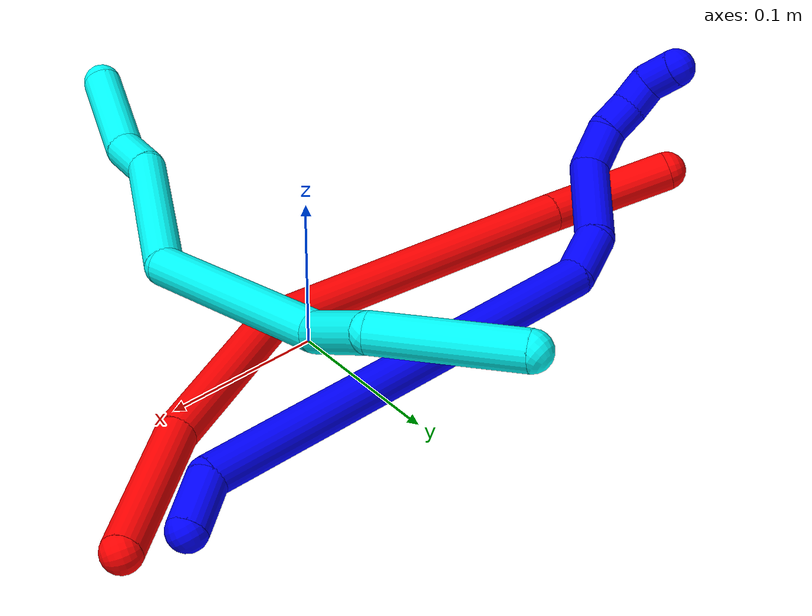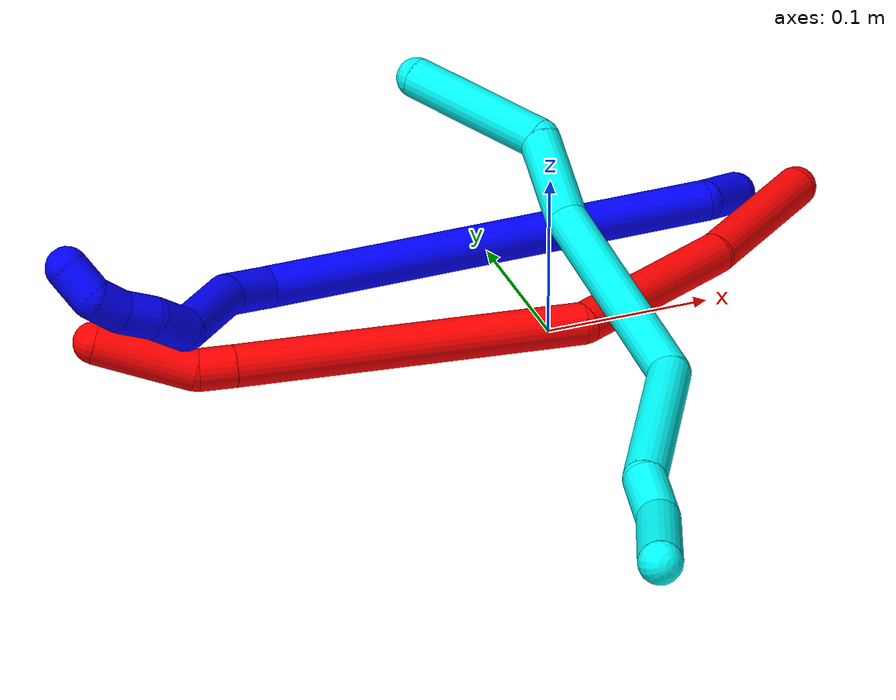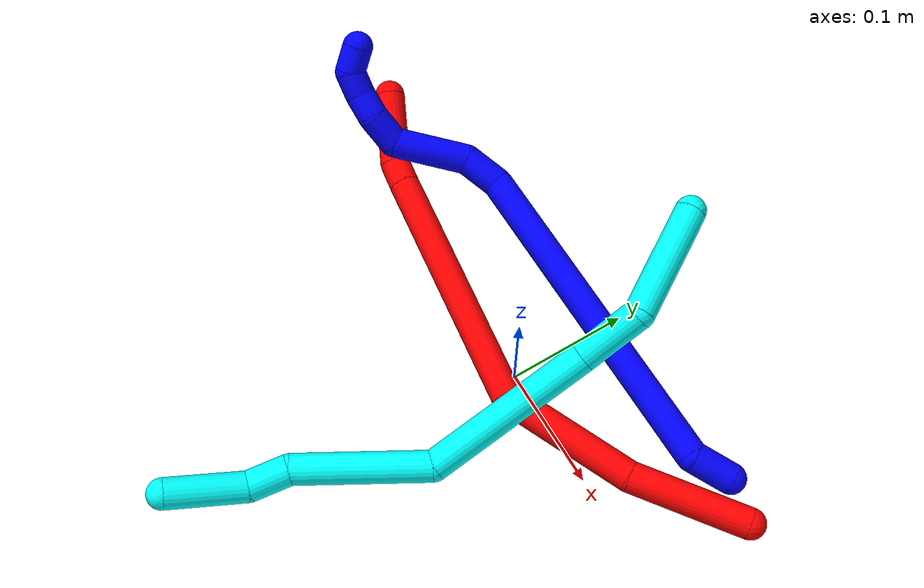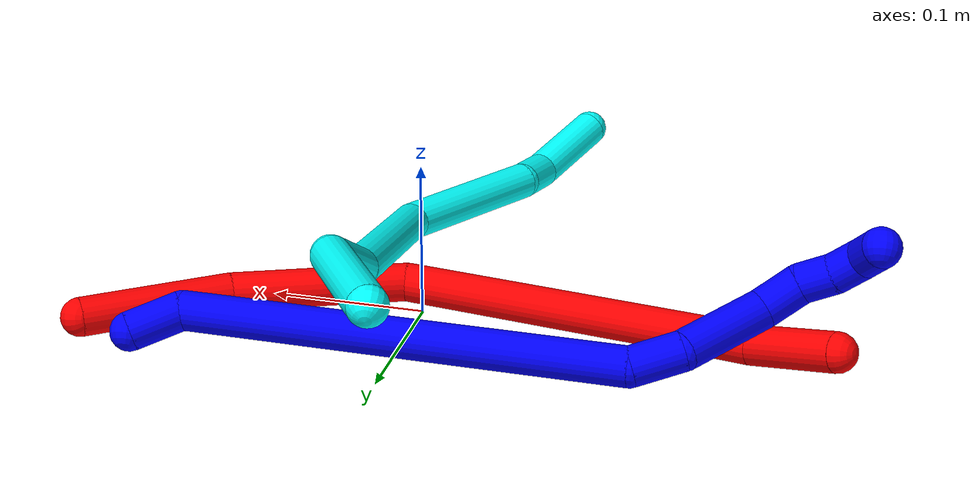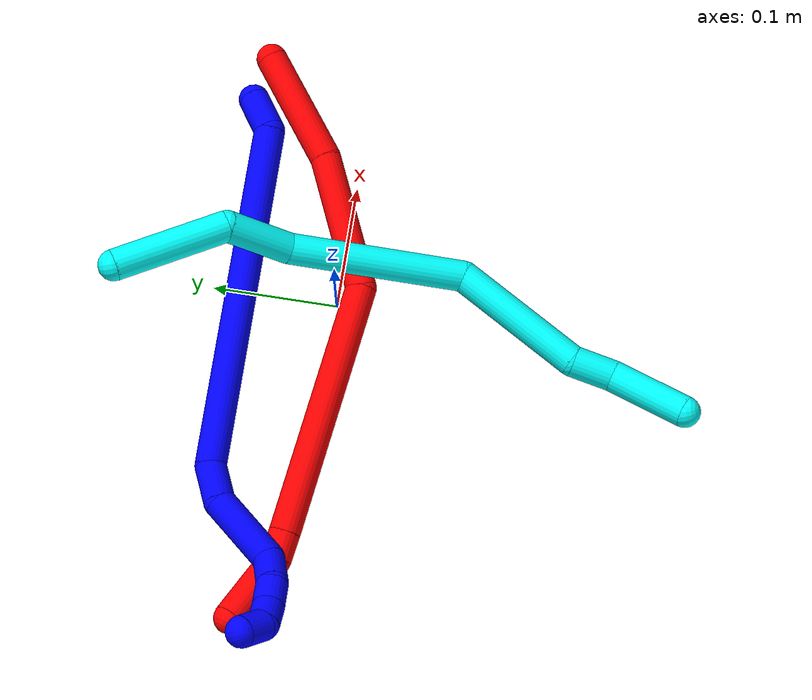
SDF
<sdf version="1.7">
 <world name="default">
  <model name="1">
   <static>0</static>
   <link name="1">
    <collision name="collision-cylinder-e_1_1_4">
     <pose>-0.014221 -0.004324 0.008858 0.454086 -0.964681 -0.240756</pose>
     <geometry><cylinder><radius>0.0125</radius><length>0.034606</length></cylinder></geometry>
     <surface>
      <friction><ode><mu>1.16</mu><mu2>1.16</mu2><slip1>0</slip1><slip2>0</slip2></ode></friction>
      <contact><ode><kp>1e+06</kp><kd>1</kd><max_vel>0</max_vel><min_depth>0.001</min_depth></ode></contact>
     </surface>
    </collision>
    <visual name="visual-cylinder-e_1_1_4">
     <pose>-0.014221 -0.004324 0.008858 0.454086 -0.964681 -0.240756</pose>
     <geometry><cylinder><radius>0.0125</radius><length>0.034606</length></cylinder></geometry>
     <material><ambient>0 0 1 1</ambient></material>
    </visual>
    <collision name="collision-cylinder-e_2_4_5">
     <pose>-0.167998 -0.018026 0.010867 2.20162 -1.48777 -2.13288</pose>
     <geometry><cylinder><radius>0.0125</radius><length>0.280078</length></cylinder></geometry>
     <surface>
      <friction><ode><mu>1.16</mu><mu2>1.16</mu2><slip1>0</slip1><slip2>0</slip2></ode></friction>
      <contact><ode><kp>1e+06</kp><kd>1</kd><max_vel>0</max_vel><min_depth>0.001</min_depth></ode></contact>
     </surface>
    </collision>
    <visual name="visual-cylinder-e_2_4_5">
     <pose>-0.167998 -0.018026 0.010867 2.20162 -1.48777 -2.13288</pose>
     <geometry><cylinder><radius>0.0125</radius><length>0.280078</length></cylinder></geometry>
     <material><ambient>0 0 1 1</ambient></material>
    </visual>
    <collision name="collision-cylinder-e_3_5_6">
     <pose>-0.322227 -0.030289 0.010581 0.413929 -1.11626 -0.260702</pose>
     <geometry><cylinder><radius>0.0125</radius><length>0.032661</length></cylinder></geometry>
     <surface>
      <friction><ode><mu>1.16</mu><mu2>1.16</mu2><slip1>0</slip1><slip2>0</slip2></ode></friction>
      <contact><ode><kp>1e+06</kp><kd>1</kd><max_vel>0</max_vel><min_depth>0.001</min_depth></ode></contact>
     </surface>
    </collision>
    <visual name="visual-cylinder-e_3_5_6">
     <pose>-0.322227 -0.030289 0.010581 0.413929 -1.11626 -0.260702</pose>
     <geometry><cylinder><radius>0.0125</radius><length>0.032661</length></cylinder></geometry>
     <material><ambient>0 0 1 1</ambient></material>
    </visual>
    <collision name="collision-cylinder-e_4_6_7">
     <pose>-0.356884 -0.047931 0.03552 0.676688 -0.703297 -0.256784</pose>
     <geometry><cylinder><radius>0.0125</radius><length>0.061801</length></cylinder></geometry>
     <surface>
      <friction><ode><mu>1.16</mu><mu2>1.16</mu2><slip1>0</slip1><slip2>0</slip2></ode></friction>
      <contact><ode><kp>1e+06</kp><kd>1</kd><max_vel>0</max_vel><min_depth>0.001</min_depth></ode></contact>
     </surface>
    </collision>
    <visual name="visual-cylinder-e_4_6_7">
     <pose>-0.356884 -0.047931 0.03552 0.676688 -0.703297 -0.256784</pose>
     <geometry><cylinder><radius>0.0125</radius><length>0.061801</length></cylinder></geometry>
     <material><ambient>0 0 1 1</ambient></material>
    </visual>
    <collision name="collision-cylinder-e_5_7_8">
     <pose>-0.388011 -0.060399 0.061752 -0.283738 -0.937284 0.144365</pose>
     <geometry><cylinder><radius>0.0125</radius><length>0.02765</length></cylinder></geometry>
     <surface>
      <friction><ode><mu>1.16</mu><mu2>1.16</mu2><slip1>0</slip1><slip2>0</slip2></ode></friction>
      <contact><ode><kp>1e+06</kp><kd>1</kd><max_vel>0</max_vel><min_depth>0.001</min_depth></ode></contact>
     </surface>
    </collision>
    <visual name="visual-cylinder-e_5_7_8">
     <pose>-0.388011 -0.060399 0.061752 -0.283738 -0.937284 0.144365</pose>
     <geometry><cylinder><radius>0.0125</radius><length>0.02765</length></cylinder></geometry>
     <material><ambient>0 0 1 1</ambient></material>
    </visual>
    <collision name="collision-cylinder-e_6_8_9">
     <pose>-0.409136 -0.056122 0.072575 -0.589962 -1.22742 0.421728</pose>
     <geometry><cylinder><radius>0.0125</radius><length>0.021203</length></cylinder></geometry>
     <surface>
      <friction><ode><mu>1.16</mu><mu2>1.16</mu2><slip1>0</slip1><slip2>0</slip2></ode></friction>
      <contact><ode><kp>1e+06</kp><kd>1</kd><max_vel>0</max_vel><min_depth>0.001</min_depth></ode></contact>
     </surface>
    </collision>
    <visual name="visual-cylinder-e_6_8_9">
     <pose>-0.409136 -0.056122 0.072575 -0.589962 -1.22742 0.421728</pose>
     <geometry><cylinder><radius>0.0125</radius><length>0.021203</length></cylinder></geometry>
     <material><ambient>0 0 1 1</ambient></material>
    </visual>
    <collision name="collision-cylinder-e_7_9_10">
     <pose>-0.427559 -0.050298 0.07954 -0.764844 -0.989736 0.427494</pose>
     <geometry><cylinder><radius>0.0125</radius><length>0.020197</length></cylinder></geometry>
     <surface>
      <friction><ode><mu>1.16</mu><mu2>1.16</mu2><slip1>0</slip1><slip2>0</slip2></ode></friction>
      <contact><ode><kp>1e+06</kp><kd>1</kd><max_vel>0</max_vel><min_depth>0.001</min_depth></ode></contact>
     </surface>
    </collision>
    <visual name="visual-cylinder-e_7_9_10">
     <pose>-0.427559 -0.050298 0.07954 -0.764844 -0.989736 0.427494</pose>
     <geometry><cylinder><radius>0.0125</radius><length>0.020197</length></cylinder></geometry>
     <material><ambient>0 0 1 1</ambient></material>
    </visual>
    <collision name="collision-cylinder-e_8_10_2">
     <pose>-0.44154 -0.037074 0.083786 -1.54449 -0.533002 0.519784</pose>
     <geometry><cylinder><radius>0.0125</radius><length>0.021804</length></cylinder></geometry>
     <surface>
      <friction><ode><mu>1.16</mu><mu2>1.16</mu2><slip1>0</slip1><slip2>0</slip2></ode></friction>
      <contact><ode><kp>1e+06</kp><kd>1</kd><max_vel>0</max_vel><min_depth>0.001</min_depth></ode></contact>
     </surface>
    </collision>
    <visual name="visual-cylinder-e_8_10_2">
     <pose>-0.44154 -0.037074 0.083786 -1.54449 -0.533002 0.519784</pose>
     <geometry><cylinder><radius>0.0125</radius><length>0.021804</length></cylinder></geometry>
     <material><ambient>0 0 1 1</ambient></material>
    </visual>
    <collision name="collision-sphere-2">
     <pose>-0.44708 -0.027687 0.084033 0 -0 0</pose>
     <geometry><sphere><radius>0.0125</radius></sphere></geometry>
     <surface>
      <friction><ode><mu>1.16</mu><mu2>1.16</mu2><slip1>0</slip1><slip2>0</slip2></ode></friction>
      <contact><ode><kp>1e+06</kp><kd>1</kd><max_vel>0</max_vel><min_depth>0.001</min_depth></ode></contact>
     </surface>
    </collision>
    <visual name="visual-sphere-2">
     <pose>-0.44708 -0.027687 0.084033 0 -0 0</pose>
     <geometry><sphere><radius>0.0125</radius></sphere></geometry>
     <material><ambient>0 0 1 1</ambient></material>
    </visual>
    <collision name="collision-sphere-10">
     <pose>-0.436001 -0.04646 0.083539 0 -0 0</pose>
     <geometry><sphere><radius>0.0125</radius></sphere></geometry>
     <surface>
      <friction><ode><mu>1.16</mu><mu2>1.16</mu2><slip1>0</slip1><slip2>0</slip2></ode></friction>
      <contact><ode><kp>1e+06</kp><kd>1</kd><max_vel>0</max_vel><min_depth>0.001</min_depth></ode></contact>
     </surface>
    </collision>
    <visual name="visual-sphere-10">
     <pose>-0.436001 -0.04646 0.083539 0 -0 0</pose>
     <geometry><sphere><radius>0.0125</radius></sphere></geometry>
     <material><ambient>0 0 1 1</ambient></material>
    </visual>
    <collision name="collision-sphere-9">
     <pose>-0.419118 -0.054137 0.075541 0 -0 0</pose>
     <geometry><sphere><radius>0.0125</radius></sphere></geometry>
     <surface>
      <friction><ode><mu>1.16</mu><mu2>1.16</mu2><slip1>0</slip1><slip2>0</slip2></ode></friction>
      <contact><ode><kp>1e+06</kp><kd>1</kd><max_vel>0</max_vel><min_depth>0.001</min_depth></ode></contact>
     </surface>
    </collision>
    <visual name="visual-sphere-9">
     <pose>-0.419118 -0.054137 0.075541 0 -0 0</pose>
     <geometry><sphere><radius>0.0125</radius></sphere></geometry>
     <material><ambient>0 0 1 1</ambient></material>
    </visual>
    <collision name="collision-sphere-4">
     <pose>-0.028442 -0.008648 0.017717 0 -0 0</pose>
     <geometry><sphere><radius>0.0125</radius></sphere></geometry>
     <surface>
      <friction><ode><mu>1.16</mu><mu2>1.16</mu2><slip1>0</slip1><slip2>0</slip2></ode></friction>
      <contact><ode><kp>1e+06</kp><kd>1</kd><max_vel>0</max_vel><min_depth>0.001</min_depth></ode></contact>
     </surface>
    </collision>
    <visual name="visual-sphere-4">
     <pose>-0.028442 -0.008648 0.017717 0 -0 0</pose>
     <geometry><sphere><radius>0.0125</radius></sphere></geometry>
     <material><ambient>0 0 1 1</ambient></material>
    </visual>
    <collision name="collision-sphere-1">
     <geometry><sphere><radius>0.0125</radius></sphere></geometry>
     <surface>
      <friction><ode><mu>1.16</mu><mu2>1.16</mu2><slip1>0</slip1><slip2>0</slip2></ode></friction>
      <contact><ode><kp>1e+06</kp><kd>1</kd><max_vel>0</max_vel><min_depth>0.001</min_depth></ode></contact>
     </surface>
    </collision>
    <visual name="visual-sphere-1">
     <geometry><sphere><radius>0.0125</radius></sphere></geometry>
     <material><ambient>0 0 1 1</ambient></material>
    </visual>
    <collision name="collision-sphere-8">
     <pose>-0.399153 -0.058108 0.069609 0 -0 0</pose>
     <geometry><sphere><radius>0.0125</radius></sphere></geometry>
     <surface>
      <friction><ode><mu>1.16</mu><mu2>1.16</mu2><slip1>0</slip1><slip2>0</slip2></ode></friction>
      <contact><ode><kp>1e+06</kp><kd>1</kd><max_vel>0</max_vel><min_depth>0.001</min_depth></ode></contact>
     </surface>
    </collision>
    <visual name="visual-sphere-8">
     <pose>-0.399153 -0.058108 0.069609 0 -0 0</pose>
     <geometry><sphere><radius>0.0125</radius></sphere></geometry>
     <material><ambient>0 0 1 1</ambient></material>
    </visual>
    <collision name="collision-sphere-5">
     <pose>-0.307555 -0.027405 0.004017 0 -0 0</pose>
     <geometry><sphere><radius>0.0125</radius></sphere></geometry>
     <surface>
      <friction><ode><mu>1.16</mu><mu2>1.16</mu2><slip1>0</slip1><slip2>0</slip2></ode></friction>
      <contact><ode><kp>1e+06</kp><kd>1</kd><max_vel>0</max_vel><min_depth>0.001</min_depth></ode></contact>
     </surface>
    </collision>
    <visual name="visual-sphere-5">
     <pose>-0.307555 -0.027405 0.004017 0 -0 0</pose>
     <geometry><sphere><radius>0.0125</radius></sphere></geometry>
     <material><ambient>0 0 1 1</ambient></material>
    </visual>
    <collision name="collision-sphere-6">
     <pose>-0.3369 -0.033173 0.017145 0 -0 0</pose>
     <geometry><sphere><radius>0.0125</radius></sphere></geometry>
     <surface>
      <friction><ode><mu>1.16</mu><mu2>1.16</mu2><slip1>0</slip1><slip2>0</slip2></ode></friction>
      <contact><ode><kp>1e+06</kp><kd>1</kd><max_vel>0</max_vel><min_depth>0.001</min_depth></ode></contact>
     </surface>
    </collision>
    <visual name="visual-sphere-6">
     <pose>-0.3369 -0.033173 0.017145 0 -0 0</pose>
     <geometry><sphere><radius>0.0125</radius></sphere></geometry>
     <material><ambient>0 0 1 1</ambient></material>
    </visual>
    <collision name="collision-sphere-7">
     <pose>-0.376868 -0.06269 0.053895 0 -0 0</pose>
     <geometry><sphere><radius>0.0125</radius></sphere></geometry>
     <surface>
      <friction><ode><mu>1.16</mu><mu2>1.16</mu2><slip1>0</slip1><slip2>0</slip2></ode></friction>
      <contact><ode><kp>1e+06</kp><kd>1</kd><max_vel>0</max_vel><min_depth>0.001</min_depth></ode></contact>
     </surface>
    </collision>
    <visual name="visual-sphere-7">
     <pose>-0.376868 -0.06269 0.053895 0 -0 0</pose>
     <geometry><sphere><radius>0.0125</radius></sphere></geometry>
     <material><ambient>0 0 1 1</ambient></material>
    </visual>
    <inertial>
     <pose>-0.235582 -0.027668 0.025141 0 -0 0</pose>
     <mass>0.5</mass>
     <inertia>
      <ixx>-0.000225</ixx>
      <ixy>0</ixy>
      <ixz>0</ixz>
      <iyy>0.001732</iyy>
      <iyz>0</iyz>
      <izz>0.002003</izz>
     </inertia>
    </inertial>
   </link>
   <pose>0.159721 0.094938 0.011499 0.736047 0.075679 -0.008936</pose>
  </model>
  <model name="2">
   <static>0</static>
   <link name="2">
    <collision name="collision-cylinder-e_1_1_4">
     <pose>-0.041866 -0.00403 0.02401 0.1663 -1.04408 -0.095815</pose>
     <geometry><cylinder><radius>0.0125</radius><length>0.096861</length></cylinder></geometry>
     <surface>
      <friction><ode><mu>1.16</mu><mu2>1.16</mu2><slip1>0</slip1><slip2>0</slip2></ode></friction>
      <contact><ode><kp>1e+06</kp><kd>1</kd><max_vel>0</max_vel><min_depth>0.001</min_depth></ode></contact>
     </surface>
    </collision>
    <visual name="visual-cylinder-e_1_1_4">
     <pose>-0.041866 -0.00403 0.02401 0.1663 -1.04408 -0.095815</pose>
     <geometry><cylinder><radius>0.0125</radius><length>0.096861</length></cylinder></geometry>
     <material><ambient>1 0 0 1</ambient></material>
    </visual>
    <collision name="collision-cylinder-e_2_4_5">
     <pose>-0.12609 -0.008293 0.085605 0.006185 -0.845021 -0.002781</pose>
     <geometry><cylinder><radius>0.0125</radius><length>0.113258</length></cylinder></geometry>
     <surface>
      <friction><ode><mu>1.16</mu><mu2>1.16</mu2><slip1>0</slip1><slip2>0</slip2></ode></friction>
      <contact><ode><kp>1e+06</kp><kd>1</kd><max_vel>0</max_vel><min_depth>0.001</min_depth></ode></contact>
     </surface>
    </collision>
    <visual name="visual-cylinder-e_2_4_5">
     <pose>-0.12609 -0.008293 0.085605 0.006185 -0.845021 -0.002781</pose>
     <geometry><cylinder><radius>0.0125</radius><length>0.113258</length></cylinder></geometry>
     <material><ambient>1 0 0 1</ambient></material>
    </visual>
    <collision name="collision-cylinder-e_3_5_6">
     <pose>-0.200477 0.006615 0.220503 -0.154347 -0.314434 0.024515</pose>
     <geometry><cylinder><radius>0.0125</radius><length>0.207123</length></cylinder></geometry>
     <surface>
      <friction><ode><mu>1.16</mu><mu2>1.16</mu2><slip1>0</slip1><slip2>0</slip2></ode></friction>
      <contact><ode><kp>1e+06</kp><kd>1</kd><max_vel>0</max_vel><min_depth>0.001</min_depth></ode></contact>
     </surface>
    </collision>
    <visual name="visual-cylinder-e_3_5_6">
     <pose>-0.200477 0.006615 0.220503 -0.154347 -0.314434 0.024515</pose>
     <geometry><cylinder><radius>0.0125</radius><length>0.207123</length></cylinder></geometry>
     <material><ambient>1 0 0 1</ambient></material>
    </visual>
    <collision name="collision-cylinder-e_4_6_7">
     <pose>-0.235662 0.023461 0.328249 -0.162027 -0.290087 0.023718</pose>
     <geometry><cylinder><radius>0.0125</radius><length>0.022064</length></cylinder></geometry>
     <surface>
      <friction><ode><mu>1.16</mu><mu2>1.16</mu2><slip1>0</slip1><slip2>0</slip2></ode></friction>
      <contact><ode><kp>1e+06</kp><kd>1</kd><max_vel>0</max_vel><min_depth>0.001</min_depth></ode></contact>
     </surface>
    </collision>
    <visual name="visual-cylinder-e_4_6_7">
     <pose>-0.235662 0.023461 0.328249 -0.162027 -0.290087 0.023718</pose>
     <geometry><cylinder><radius>0.0125</radius><length>0.022064</length></cylinder></geometry>
     <material><ambient>1 0 0 1</ambient></material>
    </visual>
    <collision name="collision-cylinder-e_5_7_2">
     <pose>-0.23712 0.024552 0.368975 0.020284 0.055977 0.000568</pose>
     <geometry><cylinder><radius>0.0125</radius><length>0.060694</length></cylinder></geometry>
     <surface>
      <friction><ode><mu>1.16</mu><mu2>1.16</mu2><slip1>0</slip1><slip2>0</slip2></ode></friction>
      <contact><ode><kp>1e+06</kp><kd>1</kd><max_vel>0</max_vel><min_depth>0.001</min_depth></ode></contact>
     </surface>
    </collision>
    <visual name="visual-cylinder-e_5_7_2">
     <pose>-0.23712 0.024552 0.368975 0.020284 0.055977 0.000568</pose>
     <geometry><cylinder><radius>0.0125</radius><length>0.060694</length></cylinder></geometry>
     <material><ambient>1 0 0 1</ambient></material>
    </visual>
    <collision name="collision-sphere-2">
     <pose>-0.235422 0.023937 0.399268 0 -0 0</pose>
     <geometry><sphere><radius>0.0125</radius></sphere></geometry>
     <surface>
      <friction><ode><mu>1.16</mu><mu2>1.16</mu2><slip1>0</slip1><slip2>0</slip2></ode></friction>
      <contact><ode><kp>1e+06</kp><kd>1</kd><max_vel>0</max_vel><min_depth>0.001</min_depth></ode></contact>
     </surface>
    </collision>
    <visual name="visual-sphere-2">
     <pose>-0.235422 0.023937 0.399268 0 -0 0</pose>
     <geometry><sphere><radius>0.0125</radius></sphere></geometry>
     <material><ambient>1 0 0 1</ambient></material>
    </visual>
    <collision name="collision-sphere-7">
     <pose>-0.238818 0.025167 0.338682 0 -0 0</pose>
     <geometry><sphere><radius>0.0125</radius></sphere></geometry>
     <surface>
      <friction><ode><mu>1.16</mu><mu2>1.16</mu2><slip1>0</slip1><slip2>0</slip2></ode></friction>
      <contact><ode><kp>1e+06</kp><kd>1</kd><max_vel>0</max_vel><min_depth>0.001</min_depth></ode></contact>
     </surface>
    </collision>
    <visual name="visual-sphere-7">
     <pose>-0.238818 0.025167 0.338682 0 -0 0</pose>
     <geometry><sphere><radius>0.0125</radius></sphere></geometry>
     <material><ambient>1 0 0 1</ambient></material>
    </visual>
    <collision name="collision-sphere-6">
     <pose>-0.232506 0.021756 0.317817 0 -0 0</pose>
     <geometry><sphere><radius>0.0125</radius></sphere></geometry>
     <surface>
      <friction><ode><mu>1.16</mu><mu2>1.16</mu2><slip1>0</slip1><slip2>0</slip2></ode></friction>
      <contact><ode><kp>1e+06</kp><kd>1</kd><max_vel>0</max_vel><min_depth>0.001</min_depth></ode></contact>
     </surface>
    </collision>
    <visual name="visual-sphere-6">
     <pose>-0.232506 0.021756 0.317817 0 -0 0</pose>
     <geometry><sphere><radius>0.0125</radius></sphere></geometry>
     <material><ambient>1 0 0 1</ambient></material>
    </visual>
    <collision name="collision-sphere-5">
     <pose>-0.168448 -0.008525 0.12319 0 -0 0</pose>
     <geometry><sphere><radius>0.0125</radius></sphere></geometry>
     <surface>
      <friction><ode><mu>1.16</mu><mu2>1.16</mu2><slip1>0</slip1><slip2>0</slip2></ode></friction>
      <contact><ode><kp>1e+06</kp><kd>1</kd><max_vel>0</max_vel><min_depth>0.001</min_depth></ode></contact>
     </surface>
    </collision>
    <visual name="visual-sphere-5">
     <pose>-0.168448 -0.008525 0.12319 0 -0 0</pose>
     <geometry><sphere><radius>0.0125</radius></sphere></geometry>
     <material><ambient>1 0 0 1</ambient></material>
    </visual>
    <collision name="collision-sphere-1">
     <geometry><sphere><radius>0.0125</radius></sphere></geometry>
     <surface>
      <friction><ode><mu>1.16</mu><mu2>1.16</mu2><slip1>0</slip1><slip2>0</slip2></ode></friction>
      <contact><ode><kp>1e+06</kp><kd>1</kd><max_vel>0</max_vel><min_depth>0.001</min_depth></ode></contact>
     </surface>
    </collision>
    <visual name="visual-sphere-1">
     <geometry><sphere><radius>0.0125</radius></sphere></geometry>
     <material><ambient>1 0 0 1</ambient></material>
    </visual>
    <collision name="collision-sphere-4">
     <pose>-0.083733 -0.00806 0.04802 0 -0 0</pose>
     <geometry><sphere><radius>0.0125</radius></sphere></geometry>
     <surface>
      <friction><ode><mu>1.16</mu><mu2>1.16</mu2><slip1>0</slip1><slip2>0</slip2></ode></friction>
      <contact><ode><kp>1e+06</kp><kd>1</kd><max_vel>0</max_vel><min_depth>0.001</min_depth></ode></contact>
     </surface>
    </collision>
    <visual name="visual-sphere-4">
     <pose>-0.083733 -0.00806 0.04802 0 -0 0</pose>
     <geometry><sphere><radius>0.0125</radius></sphere></geometry>
     <material><ambient>1 0 0 1</ambient></material>
    </visual>
    <inertial>
     <pose>-0.158901 0.004097 0.174659 0 -0 0</pose>
     <mass>0.5</mass>
     <inertia>
      <ixx>0.000852</ixx>
      <ixy>0</ixy>
      <ixz>0</ixz>
      <iyy>0.000983</iyy>
      <iyz>0</iyz>
      <izz>0.000322</izz>
     </inertia>
    </inertial>
   </link>
   <pose>0.196615 0.086705 0.012496 -1.34493 -0.215761 1.12084</pose>
  </model>
  <model name="3">
   <static>0</static>
   <link name="3">
    <collision name="collision-cylinder-e_1_1_4">
     <pose>0.022104 -0.013379 0.038817 0.331919 0.493852 0.084393</pose>
     <geometry><cylinder><radius>0.0125</radius><length>0.09326</length></cylinder></geometry>
     <surface>
      <friction><ode><mu>1.16</mu><mu2>1.16</mu2><slip1>0</slip1><slip2>0</slip2></ode></friction>
      <contact><ode><kp>1e+06</kp><kd>1</kd><max_vel>0</max_vel><min_depth>0.001</min_depth></ode></contact>
     </surface>
    </collision>
    <visual name="visual-cylinder-e_1_1_4">
     <pose>0.022104 -0.013379 0.038817 0.331919 0.493852 0.084393</pose>
     <geometry><cylinder><radius>0.0125</radius><length>0.09326</length></cylinder></geometry>
     <material><ambient>0.003922 1 0.996078 1</ambient></material>
    </visual>
    <collision name="collision-cylinder-e_2_4_5">
     <pose>0.046905 -0.049003 0.094309 0.927556 0.096728 0.048408</pose>
     <geometry><cylinder><radius>0.0125</radius><length>0.055862</length></cylinder></geometry>
     <surface>
      <friction><ode><mu>1.16</mu><mu2>1.16</mu2><slip1>0</slip1><slip2>0</slip2></ode></friction>
      <contact><ode><kp>1e+06</kp><kd>1</kd><max_vel>0</max_vel><min_depth>0.001</min_depth></ode></contact>
     </surface>
    </collision>
    <visual name="visual-cylinder-e_2_4_5">
     <pose>0.046905 -0.049003 0.094309 0.927556 0.096728 0.048408</pose>
     <geometry><cylinder><radius>0.0125</radius><length>0.055862</length></cylinder></geometry>
     <material><ambient>0.003922 1 0.996078 1</ambient></material>
    </visual>
    <collision name="collision-cylinder-e_3_5_6">
     <pose>0.053734 -0.109549 0.170419 0.572447 0.058359 0.01718</pose>
     <geometry><cylinder><radius>0.0125</radius><length>0.141655</length></cylinder></geometry>
     <surface>
      <friction><ode><mu>1.16</mu><mu2>1.16</mu2><slip1>0</slip1><slip2>0</slip2></ode></friction>
      <contact><ode><kp>1e+06</kp><kd>1</kd><max_vel>0</max_vel><min_depth>0.001</min_depth></ode></contact>
     </surface>
    </collision>
    <visual name="visual-cylinder-e_3_5_6">
     <pose>0.053734 -0.109549 0.170419 0.572447 0.058359 0.01718</pose>
     <geometry><cylinder><radius>0.0125</radius><length>0.141655</length></cylinder></geometry>
     <material><ambient>0.003922 1 0.996078 1</ambient></material>
    </visual>
    <collision name="collision-cylinder-e_4_6_7">
     <pose>0.029276 -0.174773 0.268393 0.609774 -0.546376 -0.175898</pose>
     <geometry><cylinder><radius>0.0125</radius><length>0.110043</length></cylinder></geometry>
     <surface>
      <friction><ode><mu>1.16</mu><mu2>1.16</mu2><slip1>0</slip1><slip2>0</slip2></ode></friction>
      <contact><ode><kp>1e+06</kp><kd>1</kd><max_vel>0</max_vel><min_depth>0.001</min_depth></ode></contact>
     </surface>
    </collision>
    <visual name="visual-cylinder-e_4_6_7">
     <pose>0.029276 -0.174773 0.268393 0.609774 -0.546376 -0.175898</pose>
     <geometry><cylinder><radius>0.0125</radius><length>0.110043</length></cylinder></geometry>
     <material><ambient>0.003922 1 0.996078 1</ambient></material>
    </visual>
    <collision name="collision-cylinder-e_5_7_8">
     <pose>-0.002313 -0.210978 0.320995 0.583348 -0.176188 -0.053023</pose>
     <geometry><cylinder><radius>0.0125</radius><length>0.034231</length></cylinder></geometry>
     <surface>
      <friction><ode><mu>1.16</mu><mu2>1.16</mu2><slip1>0</slip1><slip2>0</slip2></ode></friction>
      <contact><ode><kp>1e+06</kp><kd>1</kd><max_vel>0</max_vel><min_depth>0.001</min_depth></ode></contact>
     </surface>
    </collision>
    <visual name="visual-cylinder-e_5_7_8">
     <pose>-0.002313 -0.210978 0.320995 0.583348 -0.176188 -0.053023</pose>
     <geometry><cylinder><radius>0.0125</radius><length>0.034231</length></cylinder></geometry>
     <material><ambient>0.003922 1 0.996078 1</ambient></material>
    </visual>
    <collision name="collision-cylinder-e_6_8_2">
     <pose>-0.020626 -0.228781 0.362399 0.302171 -0.491026 -0.076259</pose>
     <geometry><cylinder><radius>0.0125</radius><length>0.064947</length></cylinder></geometry>
     <surface>
      <friction><ode><mu>1.16</mu><mu2>1.16</mu2><slip1>0</slip1><slip2>0</slip2></ode></friction>
      <contact><ode><kp>1e+06</kp><kd>1</kd><max_vel>0</max_vel><min_depth>0.001</min_depth></ode></contact>
     </surface>
    </collision>
    <visual name="visual-cylinder-e_6_8_2">
     <pose>-0.020626 -0.228781 0.362399 0.302171 -0.491026 -0.076259</pose>
     <geometry><cylinder><radius>0.0125</radius><length>0.064947</length></cylinder></geometry>
     <material><ambient>0.003922 1 0.996078 1</ambient></material>
    </visual>
    <collision name="collision-sphere-2">
     <pose>-0.035938 -0.237304 0.389738 0 -0 0</pose>
     <geometry><sphere><radius>0.0125</radius></sphere></geometry>
     <surface>
      <friction><ode><mu>1.16</mu><mu2>1.16</mu2><slip1>0</slip1><slip2>0</slip2></ode></friction>
      <contact><ode><kp>1e+06</kp><kd>1</kd><max_vel>0</max_vel><min_depth>0.001</min_depth></ode></contact>
     </surface>
    </collision>
    <visual name="visual-sphere-2">
     <pose>-0.035938 -0.237304 0.389738 0 -0 0</pose>
     <geometry><sphere><radius>0.0125</radius></sphere></geometry>
     <material><ambient>0.003922 1 0.996078 1</ambient></material>
    </visual>
    <collision name="collision-sphere-4">
     <pose>0.044207 -0.026758 0.077635 0 -0 0</pose>
     <geometry><sphere><radius>0.0125</radius></sphere></geometry>
     <surface>
      <friction><ode><mu>1.16</mu><mu2>1.16</mu2><slip1>0</slip1><slip2>0</slip2></ode></friction>
      <contact><ode><kp>1e+06</kp><kd>1</kd><max_vel>0</max_vel><min_depth>0.001</min_depth></ode></contact>
     </surface>
    </collision>
    <visual name="visual-sphere-4">
     <pose>0.044207 -0.026758 0.077635 0 -0 0</pose>
     <geometry><sphere><radius>0.0125</radius></sphere></geometry>
     <material><ambient>0.003922 1 0.996078 1</ambient></material>
    </visual>
    <collision name="collision-sphere-1">
     <geometry><sphere><radius>0.0125</radius></sphere></geometry>
     <surface>
      <friction><ode><mu>1.16</mu><mu2>1.16</mu2><slip1>0</slip1><slip2>0</slip2></ode></friction>
      <contact><ode><kp>1e+06</kp><kd>1</kd><max_vel>0</max_vel><min_depth>0.001</min_depth></ode></contact>
     </surface>
    </collision>
    <visual name="visual-sphere-1">
     <geometry><sphere><radius>0.0125</radius></sphere></geometry>
     <material><ambient>0.003922 1 0.996078 1</ambient></material>
    </visual>
    <collision name="collision-sphere-8">
     <pose>-0.005313 -0.220259 0.335059 0 -0 0</pose>
     <geometry><sphere><radius>0.0125</radius></sphere></geometry>
     <surface>
      <friction><ode><mu>1.16</mu><mu2>1.16</mu2><slip1>0</slip1><slip2>0</slip2></ode></friction>
      <contact><ode><kp>1e+06</kp><kd>1</kd><max_vel>0</max_vel><min_depth>0.001</min_depth></ode></contact>
     </surface>
    </collision>
    <visual name="visual-sphere-8">
     <pose>-0.005313 -0.220259 0.335059 0 -0 0</pose>
     <geometry><sphere><radius>0.0125</radius></sphere></geometry>
     <material><ambient>0.003922 1 0.996078 1</ambient></material>
    </visual>
    <collision name="collision-sphere-5">
     <pose>0.049602 -0.071248 0.110984 0 -0 0</pose>
     <geometry><sphere><radius>0.0125</radius></sphere></geometry>
     <surface>
      <friction><ode><mu>1.16</mu><mu2>1.16</mu2><slip1>0</slip1><slip2>0</slip2></ode></friction>
      <contact><ode><kp>1e+06</kp><kd>1</kd><max_vel>0</max_vel><min_depth>0.001</min_depth></ode></contact>
     </surface>
    </collision>
    <visual name="visual-sphere-5">
     <pose>0.049602 -0.071248 0.110984 0 -0 0</pose>
     <geometry><sphere><radius>0.0125</radius></sphere></geometry>
     <material><ambient>0.003922 1 0.996078 1</ambient></material>
    </visual>
    <collision name="collision-sphere-6">
     <pose>0.057865 -0.147851 0.229854 0 -0 0</pose>
     <geometry><sphere><radius>0.0125</radius></sphere></geometry>
     <surface>
      <friction><ode><mu>1.16</mu><mu2>1.16</mu2><slip1>0</slip1><slip2>0</slip2></ode></friction>
      <contact><ode><kp>1e+06</kp><kd>1</kd><max_vel>0</max_vel><min_depth>0.001</min_depth></ode></contact>
     </surface>
    </collision>
    <visual name="visual-sphere-6">
     <pose>0.057865 -0.147851 0.229854 0 -0 0</pose>
     <geometry><sphere><radius>0.0125</radius></sphere></geometry>
     <material><ambient>0.003922 1 0.996078 1</ambient></material>
    </visual>
    <collision name="collision-sphere-7">
     <pose>0.000687 -0.201696 0.306931 0 -0 0</pose>
     <geometry><sphere><radius>0.0125</radius></sphere></geometry>
     <surface>
      <friction><ode><mu>1.16</mu><mu2>1.16</mu2><slip1>0</slip1><slip2>0</slip2></ode></friction>
      <contact><ode><kp>1e+06</kp><kd>1</kd><max_vel>0</max_vel><min_depth>0.001</min_depth></ode></contact>
     </surface>
    </collision>
    <visual name="visual-sphere-7">
     <pose>0.000687 -0.201696 0.306931 0 -0 0</pose>
     <geometry><sphere><radius>0.0125</radius></sphere></geometry>
     <material><ambient>0.003922 1 0.996078 1</ambient></material>
    </visual>
    <inertial>
     <pose>0.028192 -0.121634 0.194178 0 -0 0</pose>
     <mass>0.5</mass>
     <inertia>
      <ixx>0.000433</ixx>
      <ixy>0</ixy>
      <ixz>0</ixz>
      <iyy>0.000382</iyy>
      <iyz>0</iyz>
      <izz>0.000284</izz>
     </inertia>
    </inertial>
   </link>
   <pose>-0.019286 0.168772 0.087471 1.19557 0.330164 0.066364</pose>
  </model>
 </world>
</sdf>
